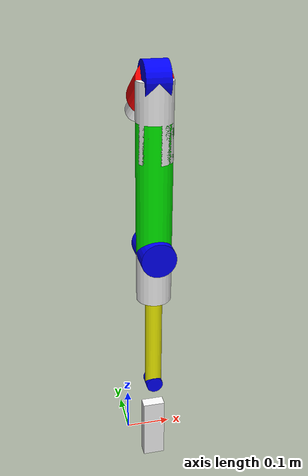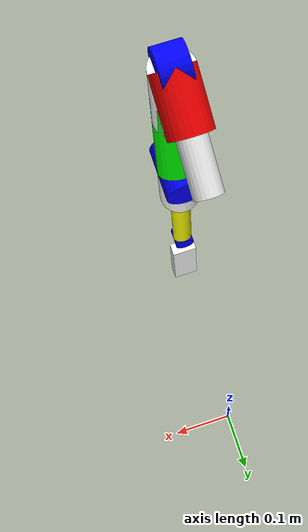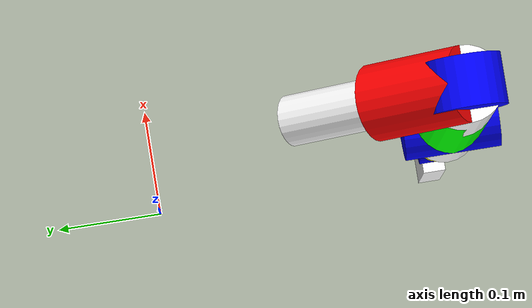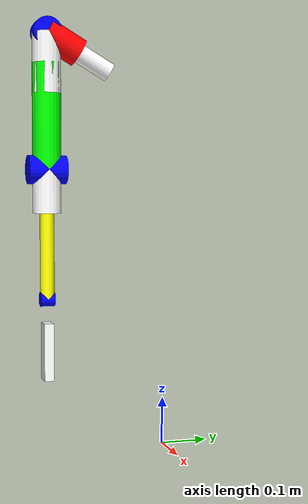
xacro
<?xml version="1.0"?>
<robot xmlns:xacro="http://www.ros.org/wiki/xacro" name="humanoid_arm">

  <!-- Material definitions -->
  <material name="blue">
    <color rgba="0.0 0.0 1.0 1.0"/>
  </material>
  <material name="red">
    <color rgba="1.0 0.0 0.0 1.0"/>
  </material>
  <material name="green">
    <color rgba="0.0 1.0 0.0 1.0"/>
  </material>
  <material name="yellow">
    <color rgba="1.0 1.0 0.0 1.0"/>
  </material>
  <material name="white">
    <color rgba="1.0 1.0 1.0 1.0"/>
  </material>

  <!-- World Link -->
  <link name="world"/>

  <!-- Fixed joint to connect robot to world -->
  <joint name="world_to_base" type="fixed">
    <parent link="world"/>
    <child link="base_link"/>
  </joint>

  <!-- Base Link (similar to torso_link in reference robot) -->
  <link name="base_link">
    <visual>
      <geometry>
        <box size="0 0 0"/>
      </geometry>
      <origin xyz="0 0 0.25" rpy="0 0 0"/>
      <material name="blue"/>
    </visual>
    <collision>
      <geometry>
        <box size="0.3 0.3 0.5"/>
      </geometry>
      <origin xyz="0 0 0.25" rpy="0 0 0"/>
    </collision>
    <inertial>
      <mass value="5.0"/>
      <origin rpy="0 0 0" xyz="0 0 0.25"/>
      <inertia ixx="0.15" ixy="0" ixz="0" iyy="0.15" iyz="0" izz="0.01"/>
    </inertial>
  </link>

  <!-- Shoulder Base Link (similar to right_shoul_base_link) -->
  <link name="shoulder_base_link">
    <visual>
      <geometry>
        <cylinder radius="0.02" length="0.075"/>
      </geometry>
      <origin xyz="0 0 0.0375" rpy="0 0 0"/>
      <material name="white"/>
    </visual>
    <collision>
      <geometry>
        <cylinder radius="0.02" length="0.075"/>
      </geometry>
      <origin xyz="0 0 0.0375" rpy="0 0 0"/>
    </collision>
    <inertial>
      <mass value="0.2"/>
      <origin rpy="0 0 0" xyz="0 0 0.0375"/>
      <inertia ixx="0.00011" ixy="0" ixz="0" iyy="0.00011" iyz="0" izz="0.00004"/>
    </inertial>
  </link>

  <!-- Joint connecting base to shoulder base (angled as in reference) -->
  <joint name="base_to_shoulder_base" type="fixed">
    <parent link="base_link"/>
    <child link="shoulder_base_link"/>
    <origin xyz="0 -0.12 0.80" rpy="1.047 0 0"/>
  </joint>

  <!-- 1. Shoulder Link (similar to right_shoul_link) -->
  <link name="shoulder_link">
    <visual>
      <geometry>
        <cylinder radius="0.03" length="0.08"/>
      </geometry>
      <origin xyz="0 0 0.04" rpy="0 0 0"/>
      <material name="red"/>
    </visual>
    <collision>
      <geometry>
        <cylinder radius="0.03" length="0.08"/>
      </geometry>
      <origin xyz="0 0 0.04" rpy="0 0 0"/>
    </collision>
    <inertial>
      <mass value="0.5"/>
      <origin rpy="0 0 0" xyz="0 0 0.04"/>
      <inertia ixx="0.00015" ixy="0" ixz="0" iyy="0.00015" iyz="0" izz="0.00009"/>
    </inertial>
  </link>

  <!-- 1. Shoulder Pitch Joint (similar to right_shoul_base2shoul_joint) -->
  <joint name="shoulder_pitch" type="revolute">
    <parent link="shoulder_base_link"/>
    <child link="shoulder_link"/>
    <origin xyz="0 0 0.075" rpy="0 0 0"/>
    <axis xyz="0 0 1"/>
    <limit lower="-2.51" upper="2.51" effort="50" velocity="15.0"/>
    <dynamics damping="0.5" friction="0.1"/>
  </joint>

  <!-- TRANSMISSION for shoulder_pitch -->
  <transmission name="trans_shoulder_pitch">
    <joint name="shoulder_pitch">
      <hardwareInterface>hardware_interface/PositionInterface</hardwareInterface>
    </joint>
    <actuator name="motor_a">
      <hardwareInterface>hardware_interface/PositionInterface</hardwareInterface>
      <mechanicalReduction>1</mechanicalReduction>
    </actuator>
  </transmission>

  <!-- 2. Upper Arm Link (similar to right_shoul_rot_link) -->
  <link name="upper_arm_link">
    <visual>
      <geometry>
        <cylinder radius="0.03" length="0.04"/>
      </geometry>
      <origin xyz="0 0 0" rpy="0 1.57075 0"/>
      <material name="blue"/>
    </visual>
    <collision>
      <geometry>
        <cylinder radius="0.03" length="0.04"/>
      </geometry>
      <origin xyz="0 0 0" rpy="0 1.57075 0"/>
    </collision>
    <inertial>
      <mass value="0.2"/>
      <origin rpy="0 0 0" xyz="0 0 0"/>
      <inertia ixx="0.00007" ixy="0" ixz="0" iyy="0.00007" iyz="0" izz="0.00009"/>
    </inertial>
  </link>

  <!-- 2. Shoulder Roll Joint (similar to right_shoul2shoul_rot_joint) -->
  <joint name="shoulder_roll" type="revolute">
    <parent link="shoulder_link"/>
    <child link="upper_arm_link"/>
    <origin xyz="0 0 0.08" rpy="-1.047 0 0"/>
    <axis xyz="1 0 0"/>
    <limit lower="-1.57" upper="0.50" effort="50" velocity="15.0"/>
    <dynamics damping="0.5" friction="0.1"/>
  </joint>

  <!-- TRANSMISSION for shoulder_roll -->
  <transmission name="trans_shoulder_roll">
    <joint name="shoulder_roll">
      <hardwareInterface>hardware_interface/PositionInterface</hardwareInterface>
    </joint>
    <actuator name="motor_b">
      <hardwareInterface>hardware_interface/PositionInterface</hardwareInterface>
      <mechanicalReduction>1</mechanicalReduction>
    </actuator>
  </transmission>

    <!-- Upper Arm Extension Link (similar to right_upper_arm_link) -->
  <link name="upper_arm_extension_link">
    <visual>
      <geometry>
        <cylinder radius="0.03" length="0.125"/>
      </geometry>
      <origin xyz="0 0 -0.0625" rpy="0 0 0"/>
      <material name="white"/>
    </visual>
    <collision>
      <geometry>
        <cylinder radius="0.03" length="0.125"/>
      </geometry>
      <origin xyz="0 0 -0.0625" rpy="0 0 0"/>
    </collision>
    <inertial>
      <mass value="0.1"/>
      <origin rpy="0 0 0" xyz="0 0 -0.0625"/>
      <inertia ixx="0.0002" ixy="0" ixz="0" iyy="0.0002" iyz="0" izz="0.0001"/>
    </inertial>
  </link>

  <!-- Fixed joint connecting upper_arm_link to extension -->
  <joint name="upper_arm_to_extension" type="fixed">
    <parent link="upper_arm_link"/>
    <child link="upper_arm_extension_link"/>
    <origin xyz="0 0 0" rpy="0 0 0"/>
  </joint>

  <!-- 3. Upper Arm Rotation Link (similar to right_armrot_link) -->
  <link name="upper_arm_rotation_link">
    <visual>
      <geometry>
        <cylinder radius="0.03" length="0.22"/>
      </geometry>
      <origin xyz="0 0 -0.11" rpy="0 0 0"/>
      <material name="green"/>
    </visual>
    <collision>
      <geometry>
        <cylinder radius="0.03" length="0.22"/>
      </geometry>
      <origin xyz="0 0 -0.11" rpy="0 0 0"/>
    </collision>
    <inertial>
      <mass value="0.8"/>
      <origin rpy="0 0 0" xyz="0 0 -0.11"/>
      <inertia ixx="0.0005" ixy="0" ixz="0" iyy="0.0005" iyz="0" izz="0.00008"/>
    </inertial>
  </link>

  <!-- 3. Upper Arm Rotation Joint (similar to right_arm2armrot_joint) -->
  <joint name="upper_arm_rotation" type="revolute">
    <parent link="upper_arm_extension_link"/>
    <child link="upper_arm_rotation_link"/>
    <origin xyz="0 0 -0.0625" rpy="0 0 0"/>
    <axis xyz="0 0 1"/>
    <limit lower="-1.57" upper="1.57" effort="50" velocity="15.0"/>
    <dynamics damping="0.1" friction="0.1"/>
  </joint>

  <!-- TRANSMISSION for upper_arm_rotation -->
  <transmission name="trans_upper_arm_rotation">
    <joint name="upper_arm_rotation">
      <hardwareInterface>hardware_interface/PositionInterface</hardwareInterface>
    </joint>
    <actuator name="motor_c">
      <hardwareInterface>hardware_interface/PositionInterface</hardwareInterface>
      <mechanicalReduction>1</mechanicalReduction>
    </actuator>
  </transmission>

  <!-- 4. Elbow Link (similar to right_elbow_link) -->
  <link name="elbow_link">
    <visual>
      <geometry>
        <cylinder radius="0.03" length="0.08"/>
      </geometry>
      <origin xyz="0 0 0" rpy="0 1.57075 -1.57075"/>
      <material name="blue"/>
    </visual>
    <collision>
      <geometry>
        <cylinder radius="0.03" length="0.08"/>
      </geometry>
      <origin xyz="0 0 0" rpy="0 1.57075 -1.57075"/>
    </collision>
    <inertial>
      <mass value="0.5"/>
      <origin rpy="0 0 0" xyz="0 0 0"/>
      <inertia ixx="0.0005" ixy="0" ixz="0" iyy="0.0005" iyz="0" izz="0.0005"/>
    </inertial>
  </link>

  <!-- 4. Elbow Pitch Joint (similar to right_armrot2elbow_joint) -->
  <joint name="elbow_pitch" type="revolute">
    <parent link="upper_arm_rotation_link"/>
    <child link="elbow_link"/>
    <origin xyz="0 0 -0.22" rpy="0 0 0"/>
    <axis xyz="0 1 0"/>
    <limit lower="-2.2" upper="0" effort="50" velocity="15.0"/>
    <dynamics damping="0.1" friction="0.1"/>
  </joint>

  <!-- TRANSMISSION for elbow_pitch -->
  <transmission name="trans_elbow_pitch">
    <joint name="elbow_pitch">
      <hardwareInterface>hardware_interface/PositionInterface</hardwareInterface>
    </joint>
    <actuator name="motor_d">
      <hardwareInterface>hardware_interface/PositionInterface</hardwareInterface>
      <mechanicalReduction>1</mechanicalReduction>
    </actuator>
  </transmission>

  <!-- 5. Forearm Link (similar to right_forearm_link) -->
  <link name="forearm_link">
    <visual>
      <geometry>
        <cylinder radius="0.03" length="0.09"/>
      </geometry>
      <origin xyz="0 0 0" rpy="0 0 0"/>
      <material name="white"/>
    </visual>
    <collision>
      <geometry>
        <cylinder radius="0.03" length="0.09"/>
      </geometry>
      <origin xyz="0 0 0" rpy="0 0 0"/>
    </collision>
    <inertial>
      <mass value="0.7"/>
      <origin rpy="0 0 0" xyz="0 0 0"/>
      <inertia ixx="0.0001" ixy="0" ixz="0" iyy="0.0001" iyz="0" izz="0.00004"/>
    </inertial>
  </link>

  <!-- Fixed joint connecting elbow to forearm -->
  <joint name="elbow_forearm_connection" type="fixed">
    <parent link="elbow_link"/>
    <child link="forearm_link"/>
    <origin xyz="0 0 -0.045" rpy="0 0 0"/>
  </joint>

  <!-- 5. Forearm Rotation Link (similar to right_forearmrot_link) -->
  <link name="forearm_rotation_link">
    <visual>
      <geometry>
        <cylinder radius="0.015" length="0.18"/>
      </geometry>
      <origin xyz="0 0 -0.09" rpy="0 0 0"/>
      <material name="yellow"/>
    </visual>
    <collision>
      <geometry>
        <cylinder radius="0.015" length="0.18"/>
      </geometry>
      <origin xyz="0 0 -0.09" rpy="0 0 0"/>
    </collision>
    <inertial>
      <mass value="0.5"/>
      <origin rpy="0 0 0" xyz="0 0 -0.09"/>
      <inertia ixx="0.0004" ixy="0" ixz="0" iyy="0.0004" iyz="0" izz="0.0001"/>
    </inertial>
  </link>

    <!-- 5. Forearm Rotation Joint (similar to right_forearm2forearmrot_joint) -->
  <joint name="forearm_rotation" type="revolute">
    <parent link="forearm_link"/>
    <child link="forearm_rotation_link"/>
    <origin xyz="0 0 -0.045" rpy="0 0 0"/>
    <axis xyz="0 0 1"/>
    <limit lower="-1.57" upper="1.57" effort="30" velocity="2.0"/>
    <dynamics damping="0.1" friction="0.1"/>
  </joint>

  <!-- TRANSMISSION for forearm_rotation -->
  <transmission name="trans_forearm_rotation">
    <joint name="forearm_rotation">
      <hardwareInterface>hardware_interface/PositionInterface</hardwareInterface>
    </joint>
    <actuator name="motor_e">
      <hardwareInterface>hardware_interface/PositionInterface</hardwareInterface>
      <mechanicalReduction>1</mechanicalReduction>
    </actuator>
  </transmission>

  <!-- 6. Wrist Pitch Link (similar to right_forearm_pitch_link) -->
  <link name="wrist_link">
    <visual>
      <geometry>
        <cylinder radius="0.015" length="0.03"/>
      </geometry>
      <origin xyz="0 0 0" rpy="1.57075 0 0"/>
      <material name="blue"/>
    </visual>
    <collision>
      <geometry>
        <cylinder radius="0.015" length="0.03"/>
      </geometry>
      <origin xyz="0 0 0" rpy="1.57075 0 0"/>
    </collision>
    <inertial>
      <mass value="0.3"/>
      <origin rpy="0 0 0" xyz="0 0 0"/>
      <inertia ixx="0.00001" ixy="0" ixz="0" iyy="0.00001" iyz="0" izz="0.00001"/>
    </inertial>
  </link>

  <!-- 6. Wrist Pitch Joint (similar to right_forearmrot2forearm_pitch_joint) -->
  <joint name="wrist_pitch" type="revolute">
    <parent link="forearm_rotation_link"/>
    <child link="wrist_link"/>
    <origin xyz="0 0 -0.18" rpy="0 0 0"/>
    <axis xyz="0 1 0"/>
    <limit lower="-0.785" upper="0.785" effort="10" velocity="2.0"/>
    <dynamics damping="0.1" friction="0.1"/>
  </joint>

  <!-- TRANSMISSION for wrist_pitch -->
  <transmission name="trans_wrist_pitch">
    <joint name="wrist_pitch">
      <hardwareInterface>hardware_interface/PositionInterface</hardwareInterface>
    </joint>
    <actuator name="motor_f">
      <hardwareInterface>hardware_interface/PositionInterface</hardwareInterface>
      <mechanicalReduction>1</mechanicalReduction>
    </actuator>
  </transmission>

  <!-- 7. Hand Link (similar to right_hand_link) -->
  <link name="hand_link">
    <visual>
      <geometry>
        <box size="0.04 0.02 0.12"/>
      </geometry>
      <origin xyz="0 0 -0.06" rpy="0 0 0"/>
      <material name="white"/>
    </visual>
    <collision>
      <geometry>
        <box size="0.04 0.02 0.12"/>
      </geometry>
      <origin xyz="0 0 -0.06" rpy="0 0 0"/>
    </collision>
    <inertial>
      <mass value="0.2"/>
      <origin rpy="0 0 0" xyz="0 0 -0.06"/>
      <inertia ixx="0.001" ixy="0" ixz="0" iyy="0.001" iyz="0" izz="0.001"/>
    </inertial>
  </link>

  <!-- 7. Wrist Yaw Joint (similar to right_forearm_roll2hand_joint but as a revolute joint) -->
  <joint name="wrist_yaw" type="revolute">
    <parent link="wrist_link"/>
    <child link="hand_link"/>
    <origin xyz="0 0 -0.05" rpy="0 0 0"/>
    <axis xyz="0 0 1"/> <!-- Z-axis rotation for yaw -->
    <limit lower="-0.52" upper="0.52" effort="5" velocity="2.0"/>
    <dynamics damping="0.05" friction="0.05"/>
  </joint>

  <!-- TRANSMISSION for wrist_yaw -->
  <transmission name="trans_wrist_yaw">
    <joint name="wrist_yaw">
      <hardwareInterface>hardware_interface/PositionInterface</hardwareInterface>
    </joint>
    <actuator name="motor_g">
      <hardwareInterface>hardware_interface/PositionInterface</hardwareInterface>
      <mechanicalReduction>1</mechanicalReduction>
    </actuator>
  </transmission>

  <!-- ros2_control tag -->
  <ros2_control name="GazeboSystem" type="system">
    <hardware>
      <plugin>gazebo_ros2_control/GazeboSystem</plugin>
    </hardware>

    <joint name="shoulder_pitch">
      <command_interface name="position">
        <param name="min">-2.51</param>
        <param name="max">2.51</param>
      </command_interface>
      <state_interface name="position"/>
      <state_interface name="velocity"/>
    </joint>

    <joint name="shoulder_roll">
      <command_interface name="position">
        <param name="min">-1.57</param>
        <param name="max">0.50</param>
      </command_interface>
      <state_interface name="position"/>
      <state_interface name="velocity"/>
    </joint>

    <joint name="upper_arm_rotation">
      <command_interface name="position">
        <param name="min">-1.57</param>
        <param name="max">1.57</param>
      </command_interface>
      <state_interface name="position"/>
      <state_interface name="velocity"/>
    </joint>

    <joint name="elbow_pitch">
      <command_interface name="position">
        <param name="min">-2.2</param>
        <param name="max">0</param>
      </command_interface>
      <state_interface name="position"/>
      <state_interface name="velocity"/>
    </joint>

    <joint name="forearm_rotation">
      <command_interface name="position">
        <param name="min">-1.57</param>
        <param name="max">1.57</param>
      </command_interface>
      <state_interface name="position"/>
      <state_interface name="velocity"/>
    </joint>

    <joint name="wrist_pitch">
      <command_interface name="position">
        <param name="min">-0.785</param>
        <param name="max">0.785</param>
      </command_interface>
      <state_interface name="position"/>
      <state_interface name="velocity"/>
    </joint>

    <joint name="wrist_yaw">
      <command_interface name="position">
        <param name="min">-0.52</param>
        <param name="max">0.52</param>
      </command_interface>
      <state_interface name="position"/>
      <state_interface name="velocity"/>
    </joint>
  </ros2_control>

    <gazebo>
    <plugin name="gazebo_ros2_control" filename="libgazebo_ros2_control.so">
      <parameters>$(find humarm_ros2)/config/ros2_control.yaml</parameters>
    </plugin>
  </gazebo>

</robot>
